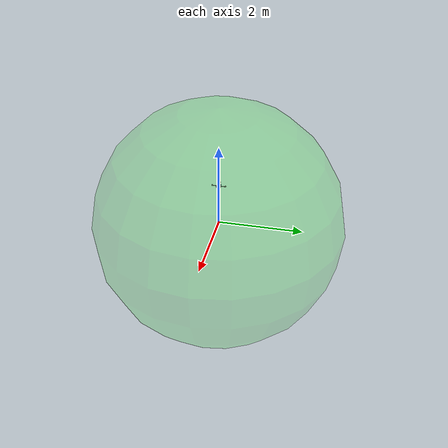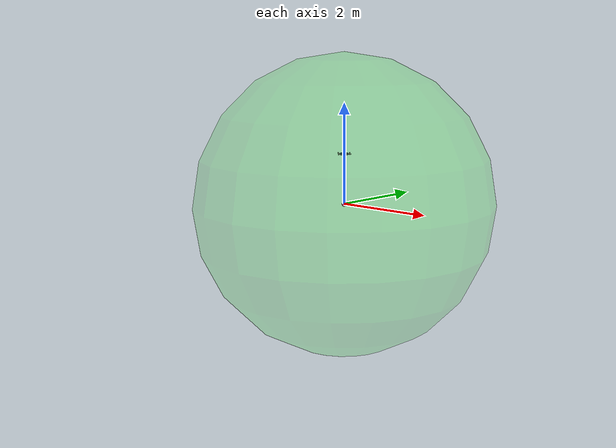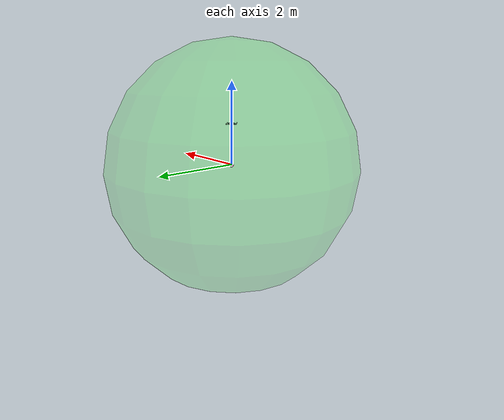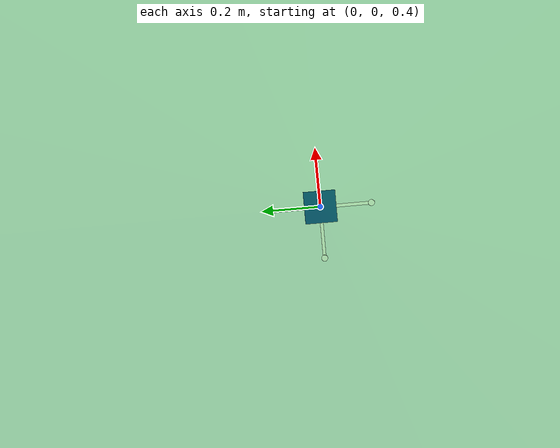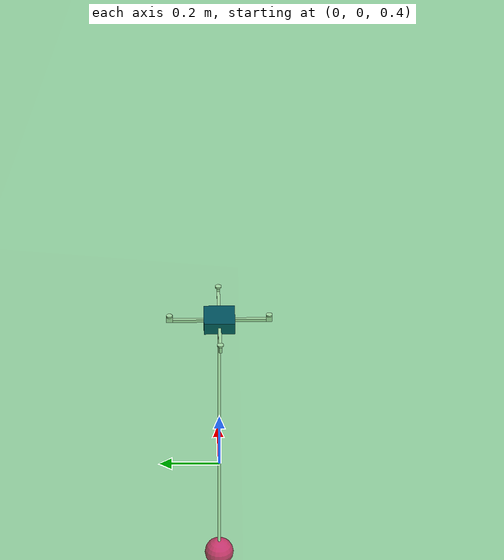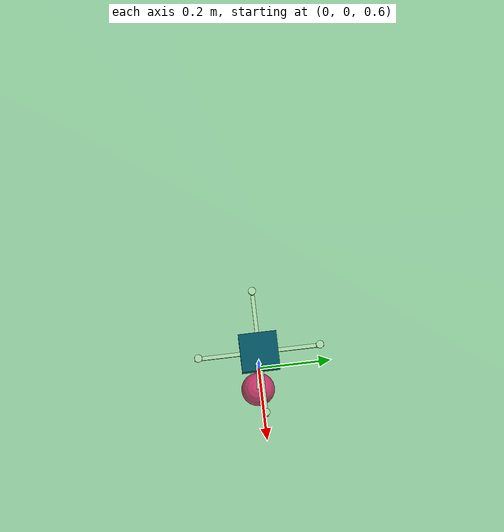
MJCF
<!-- Quadrotor with `+` configuration. Front: Along body X-axis -->

<mujoco model="quadrotor_payload">
    <include file="empty_world_center.xml"/>
    <compiler angle="degree" inertiafromgeom="true" coordinate="local"/>
    <option	timestep="0.002" gravity="0 0 -9.81" density="1.225" viscosity="1.789e-5" integrator="RK4"/>
    <default>
        <joint armature="1" damping="1" limited="true"/>
        <geom conaffinity="0" condim="3" density="5.0" friction="1 0.5 0.5" margin="0.01" rgba="0.8 0.6 0.4 1"/>
    </default>

    <worldbody>
        <body name="core" pos="0 0 1.0">
            <geom name="core_geom" type="box" pos="0 0 0" quat="1 0 0 0" size=".05 .05 .02" rgba="0 0.15 0.47 1" mass="0.6"/>
            <joint name="root" type="free" damping="0" armature="0" pos="0 0 0" limited="false"/>
            <geom name="arm_front0" type="box" pos="0.1 0 0" size=".05 .005 .005" quat="1 0 0 0" rgba=".8 .8 .8 1" mass=".02"/>
            <geom name="arm_back0" type="box" pos="-0.1 0 0" size=".05 .005 .005" quat="0 0 0 1" rgba=".8 .8 .8 1" mass=".02"/>
            <geom name="arm_left0" type="box" pos="0 0.1 0" size=".05 .005 .005" quat=".707 0 0 .707" rgba=".8 .8 .8 1" mass=".02"/>
            <geom name="arm_right0" type="box" pos="0 -0.1 0" size=".05 .005 .005" quat=".707 0 0 -.707" rgba=".8 .8 .8 1" mass=".02"/>

            <body name="arm_front1" pos=".15 0 0">
                <geom type="box" pos=".01 0 .005" size=".01 .005 .01" quat="1 0 0 0" rgba=".8 .8 .8 1" mass=".01"/>
                <body name="thruster0" pos="0.01 0 0.015">
                    <geom type="cylinder" pos="0 0 .0025" size=".05 .0025" quat="1 0 0 0" rgba="1 0.67 0 0.5" mass=".02"/>
                    <site name="motor0" type="cylinder" pos="0 0 .0025" size=".01 .0025" quat="1 0 0 0" rgba=".8 .8 .8 1"/>
                </body>
            </body>

            <body name="arm_back1" pos="-.15 0 0">
                <geom type="box" pos="-.01 0 .005" size=".01 .005 .01" quat="0 0 0 1" rgba=".8 .8 .8 1" mass=".01"/>
                <body name="thruster1" pos="-0.01 0 .015">
                    <geom type="cylinder" pos="0 0 .0025" size=".05 .0025" quat="1 0 0 0" rgba="1 0.67 0 0.5" mass=".02"/>
                    <site name="motor1" type="cylinder" pos="0 0 .0025" size=".01 .0025" quat="1 0 0 0" rgba=".8 .8 .8 1"/>
                </body>
            </body>

            <body name="arm_left1" pos="0 .15 0">
                <geom type="box" pos="0 .01 .005" size=".01 .005 .01" quat=".7071068 0 0 .7071068" rgba=".8 .8 .8 1" mass=".01"/>
                <body name="thruster2" pos="0 0.01 0.015">
                    <geom type="cylinder" pos="0 0 .0025" size=".05 .0025" quat="1 0 0 0" rgba="1 0.67 0 0.5" mass=".02"/>
                    <site name="motor2" type="cylinder" pos="0 0 .0025" size=".01 0.0025" quat="1 0 0 0" rgba=".8 .8 .8 1"/>
                </body>
            </body>

            <body name="arm_right1" pos="0 -.15 0">
                <geom type="box" pos="0 -.01 .005" size=".01 .005 .01" quat=".7071068 0 0 -.7071068" rgba=".8 .8 .8 1" mass=".01"/>
                <body name="thruster3" pos="0 -0.01 .015">
                    <geom type="cylinder" pos="0 0 .0025" size=".05 .0025" quat="1 0 0 0" rgba="1 0.67 0 0.5" mass=".02"/>
                    <site name="motor3" type="cylinder" pos="0 0 .0025" size=".01 .0025" quat="1 0 0 0" rgba=".8 .8 .8 1"/>
                </body>
            </body>

            <body name="hook_core" pos="0 0 -0.02">
                <joint name="hook_core_joint" type="ball" pos="0 0 0" damping="0.1" armature="0.01"/>
                <geom type="sphere" size="0.02" rgba=".8 .8 .8 1"/>
                <site name="hook_core_site" pos="0 0 0" type="sphere" size="0.01" rgba=".8 .8 .8 1"/>
            </body>

            <site name="x_axis" type="box" pos=".1 .0 .0" size=".15 .005 .005" quat="1 0 0 0" rgba="1 0 0 0.2"/>
            <site name="y_axis" type="box" pos=".0 .1 .0" size=".15 .005 .005" quat=".707 0 0 .707" rgba="0 1 0 0.2"/>
            <site name="z_axis" type="box" pos=".0 .0 .1" size=".15 .005 .005" quat="-.707 0 .707 0" rgba="0 0 1 0.2"/>
        </body>

        <body name="payload" pos="0 0 0">
            <joint name="payload" type="free" damping="0" armature="0" pos="0 0 0" limited="false"/>
            <geom type="sphere" size="0.05" rgba="1 0.02 0.54 1" mass="0.1"/>
            <body name="hook_payload" pos="0 0 0">
                <joint name="hook_payload_joint" type="ball" pos="0 0 0" range="0 0" damping="0.1" armature="0.01" limited="true"/>
                <geom type="sphere" size="0.02" rgba=".8 .8 .8 1"/>
                <site name="hook_payload_site" pos="0 0 0" type="sphere" size="0.01" rgba=".8 .8 .8 1"/>
            </body>
        </body>

    </worldbody>

    <tendon>
        <spatial range="0 1.0" limited="true" rgba="1 1 1 1" width=".005" stiffness="0">
            <site site="hook_core_site"/>
            <site site="hook_payload_site"/>
        </spatial>
    </tendon>

    <actuator>
        <motor name="Motor0" ctrllimited="true" ctrlrange="0 5" gear="0  0. 1. 0. 0. -0.025" site="motor0"/>
        <motor name="Motor1" ctrllimited="true" ctrlrange="0 5" gear="0  0. 1. 0. 0. -0.025" site="motor1"/>
        <motor name="Motor2" ctrllimited="true" ctrlrange="0 5" gear="0  0. 1. 0. 0.  0.025" site="motor2"/>
        <motor name="Motor3" ctrllimited="true" ctrlrange="0 5" gear="0  0. 1. 0. 0.  0.025" site="motor3"/>
    </actuator>
</mujoco>

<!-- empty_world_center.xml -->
<mujoco model="empty-world">
	<compiler angle="degree" coordinate="local" inertiafromgeom="true"/>
	<option integrator="RK4" timestep="0.01"/>
	<size nconmax="500" njmax="1000"/>
	<default>
		<joint armature="1" damping="1" limited="true"/>
		<geom conaffinity="0" condim="3" density="5.0" friction="1 0.5 0.5" margin="0.01" rgba="0.8 0.6 0.4 1"/>
	</default>
	<asset>
		<texture fileback="images/sunny-back.png" filedown="images/sunny-down.png" filefront="images/sunny-front.png" fileleft="images/sunny-left.png" fileright="images/sunny-right.png" fileup="images/sunny-up.png" type="skybox"/>
		<texture builtin="flat" height="1278" mark="cross" markrgb="1 1 1" name="texgeom" random="0.01" rgb1="0.8627450980392157 0.8901960784313725 0.9137254901960784" rgb2="0.9058823529411765 0.9215686274509803 0.9647058823529412" type="cube" width="127"/>
		<texture builtin="checker" height="100" name="texplane" rgb1="0.8235294117647058 0.8117647058823529 0.9450980392156862" rgb2="0.43137254901960786 0.6392156862745098 0.9019607843137255" type="2d" width="100"/>
		<material name="MatPlane" reflectance="0.5" shininess="1" specular="1" texrepeat="60 60" texture="texplane"/>
		<material name="geom" texture="texgeom" texuniform="true"/>
	</asset>
	<worldbody>
		<light cutoff="100" diffuse="1 1 1" dir="0 0 -1.3" directional="true" exponent="1" pos="0 0 1.3" specular="0.1 0.1 0.1"/>
		<geom type="sphere" size="3.0" pos="0 0 0" rgba="0 1 0 0.1" conaffinity="0"/> Transparent green ball
	</worldbody>
</mujoco>
